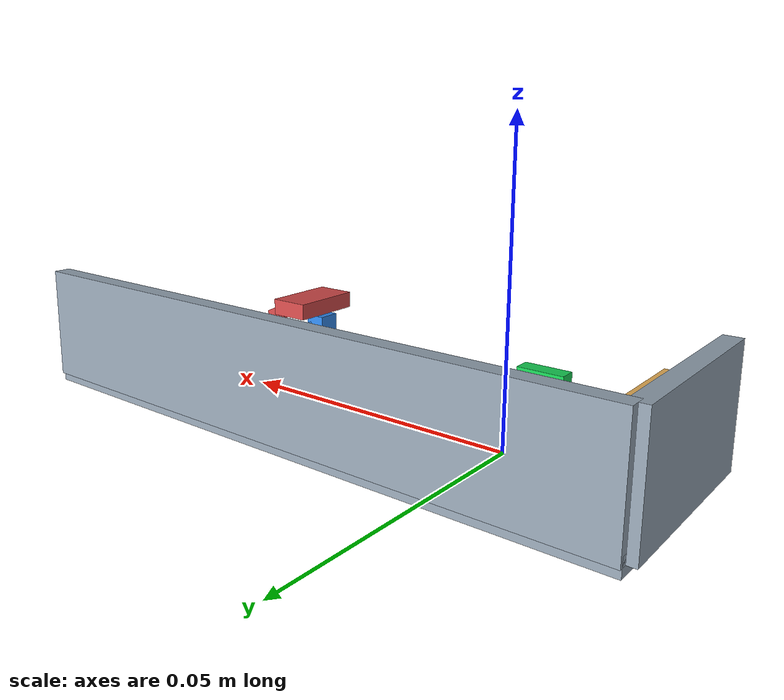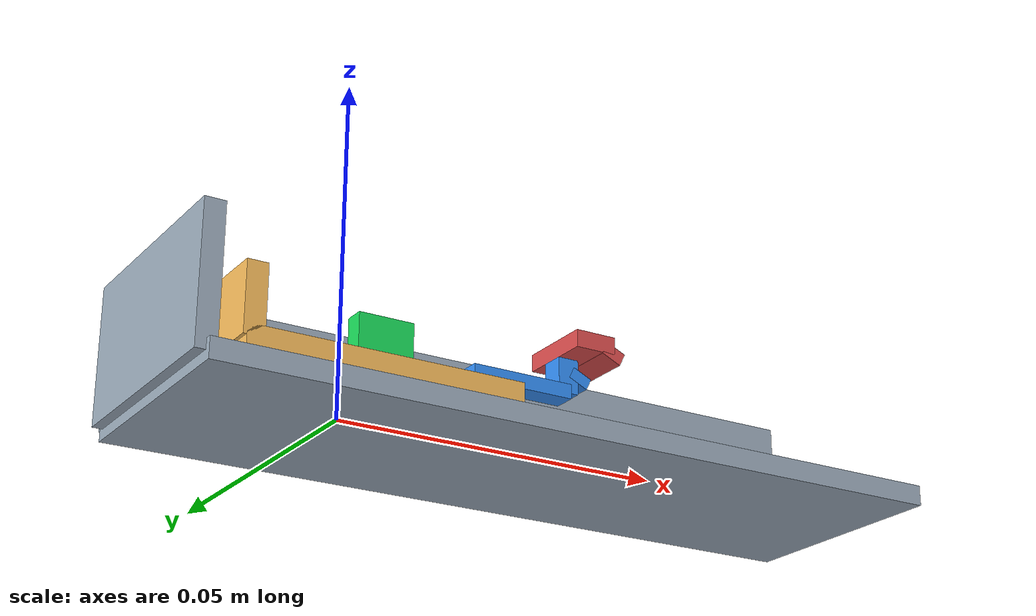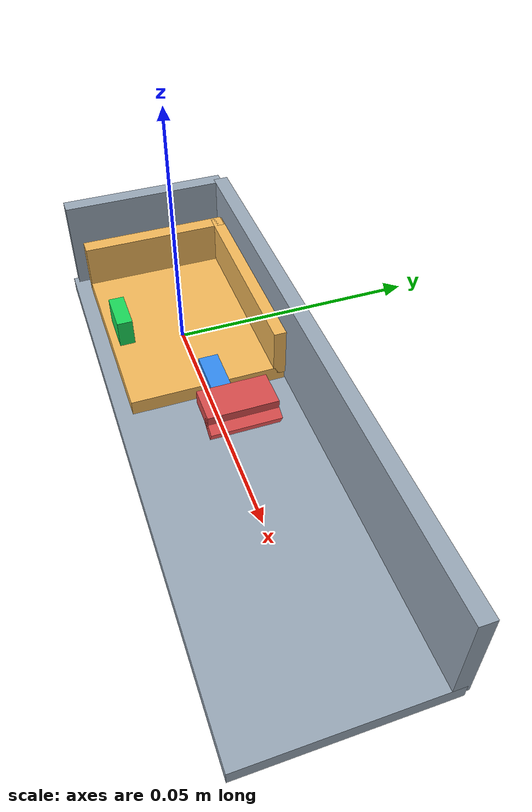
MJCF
<?xml version="1.0" ?>
<mujoco model="t2_latch">
  <compiler angle="radian" autolimits="true"/>
  <option timestep="0.0001" integrator="implicitfast" cone="elliptic" impratio="10" gravity="0 0 0"/>
  <visual>
    <headlight ambient="0.5 0.5 0.5" diffuse="0.6 0.6 0.6" specular="0.2 0.2 0.2"/>
    <global offwidth="1280" offheight="960"/>
  </visual>
  <default>
    <geom density="0" contype="0" conaffinity="0" group="2"/>
  </default>
  <asset>
    <material name="cab" rgba="0.60 0.66 0.72 1"/>
    <material name="recv" rgba="0.85 0.30 0.30 1"/>
    <material name="drawer" rgba="0.95 0.72 0.35 1"/>
    <material name="hook" rgba="0.20 0.55 0.95 1"/>
    <material name="mk" rgba="0.10 0.85 0.35 1"/>
  </asset>
  <worldbody>
    <light pos="0.02 -0.2 0.3" dir="-0.05 0.3 -1" directional="true" diffuse="0.5 0.5 0.5"/>
    <camera name="cutaway" pos="0.03 -0.11 0.05" xyaxes="1 0 0 0 0.4 0.92"/>
    <camera name="zoom" pos="0.040 -0.040 0.024" xyaxes="1 0 0 0 0.45 0.89"/>
    <geom name="cab_floor" type="box" pos="0.03 0 -0.001" size="0.055999999999999994 0.018 0.0015" material="cab"/>
    <geom name="cab_farwall" type="box" pos="0.03 0.017 0.009" size="0.055999999999999994 0.0015 0.010" material="cab"/>
    <geom name="cab_back" type="box" pos="-0.026 0 0.009" size="0.0015 0.017 0.010" material="cab"/>
    <geom name="receiver" type="box" pos="0.0375 0 0.0170" size="0.0032 0.006 0.0013" material="recv"/>
    <geom name="recv_ramp" type="box" pos="0.0405 0 0.0158" euler="0 35 0" size="0.0016 0.006 0.0010" material="recv"/>
    <body name="drawer" pos="0 0 0">
      <joint name="drawer_slide" type="slide" axis="1 0 0" pos="0 0 0" limited="true" range="0 0.060000" damping="150" solreflimit="0.002 1" solimplimit="0.99 0.9999 1e-5 0.5 2"/>
      <geom name="dr_floor" type="box" pos="0 0 0.003" size="0.020 0.015 0.0015" material="drawer" mass="0.04"/>
      <geom name="dr_back" type="box" pos="-0.019 0 0.008" size="0.0015 0.015 0.005" material="drawer" mass="0.004"/>
      <geom name="dr_farwall" type="box" pos="0 0.014 0.008" size="0.020 0.0012 0.005" material="drawer" mass="0.004"/>
      <geom name="latch_arm" type="box" pos="0.028 0 0.0105" size="0.008 0.0018 0.0011" material="hook" mass="0.002"/>
      <geom name="latch_barb" type="box" pos="0.0355 0 0.0128" size="0.0016 0.0018 0.0026" material="hook" mass="0.001"/>
      <geom name="latch_ramp" type="box" pos="0.0375 0 0.0128" euler="0 35 0" size="0.0016 0.0018 0.0009" material="hook" mass="0.0005"/>
      <geom name="mk_drawer" type="box" pos="0 -0.012 0.006" size="0.004 0.0015 0.004" material="mk"/>
    </body>
  </worldbody>
  <equality>
    <joint name="latch" joint1="drawer_slide" polycoef="0 0 0 0 0" active="false" solref="-1e8 -1e4" solimp="0.9999 0.99999 1e-6 0.5 2"/>
  </equality>
  <actuator>
    <velocity name="drive" joint="drawer_slide" kv="600"/>
  </actuator>
</mujoco>
